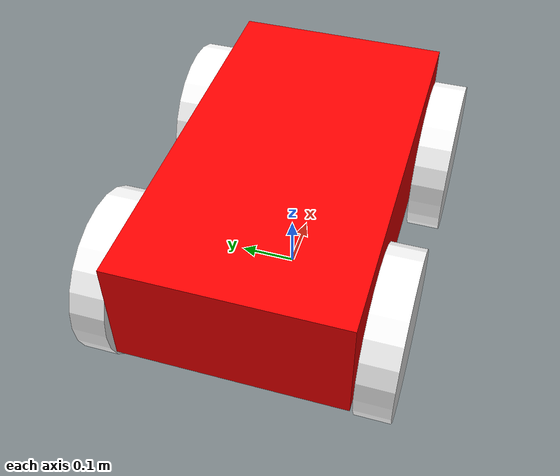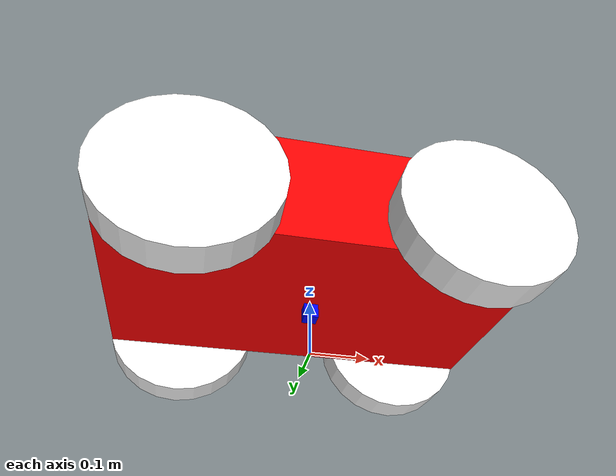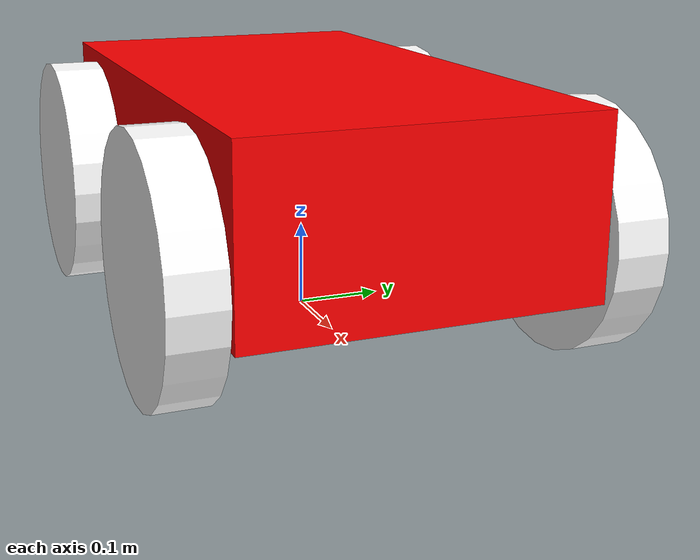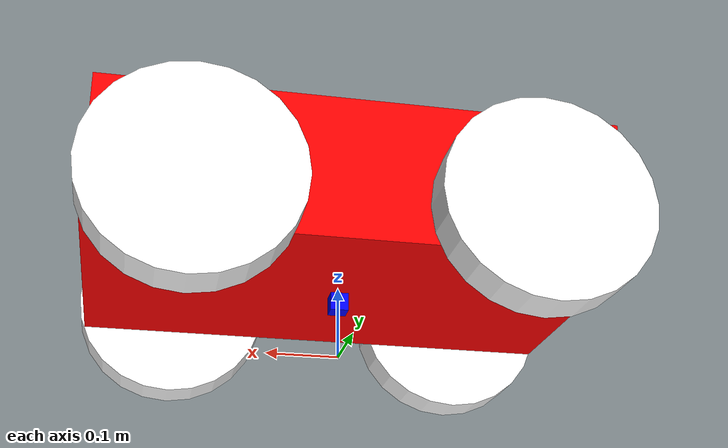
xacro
<?xml version="1.0" ?>
<robot name="isi_robot" xmlns:xacro="http://ros.org/wiki/xacro">

  <!-- ****************** ROBOT CONSTANTS *******************************  -->
  <xacro:property name="base_width" value="0.39"/>
  <xacro:property name="base_length" value="0.70"/>
  <xacro:property name="base_height" value="0.20"/>
  <xacro:property name="wheel_radius" value="0.14"/>
  <xacro:property name="wheel_width" value="0.06"/>
  <xacro:property name="wheel_ygap" value="0.035"/>
  <xacro:property name="wheel_zoff" value="0.05"/>
  <xacro:property name="wheel_xoff" value="0.221"/>
  <xacro:property name="caster_xoff" value="0.217"/>

  <!-- Define intertial property macros  -->
  <xacro:macro name="box_inertia" params="m w h d">
    <inertial>
      <origin xyz="0 0 0" rpy="${pi/2} 0 ${pi/2}"/>
      <mass value="${m}"/>
      <inertia ixx="${(m/12) * (h*h + d*d)}" ixy="0.0" ixz="0.0" iyy="${(m/12) * (w*w + d*d)}" iyz="0.0" izz="${(m/12) * (w*w + h*h)}"/>
    </inertial>
  </xacro:macro>

  <xacro:macro name="cylinder_inertia" params="m r h">
    <inertial>
      <origin xyz="0 0 0" rpy="${pi/2} 0 0" />
      <mass value="${m}"/>
      <inertia ixx="${(m/12) * (3*r*r + h*h)}" ixy="0" ixz="0" iyy="${(m/12) * (3*r*r + h*h)}" iyz="0" izz="${(m/2) * (r*r)}"/>
    </inertial>
  </xacro:macro>

  <xacro:macro name="sphere_inertia" params="m r">
    <inertial>
      <mass value="${m}"/>
      <inertia ixx="${(2/5) * m * (r*r)}" ixy="0.0" ixz="0.0" iyy="${(2/5) * m * (r*r)}" iyz="0.0" izz="${(2/5) * m * (r*r)}"/>
    </inertial>
  </xacro:macro>

  <!-- ****************** ROBOT BASE FOOTPRINT ***************************  -->
  <link name="base_footprint"/>
  <joint name="base_joint" type="fixed">
    <parent link="base_footprint"/>
    <child link="base_link" />
    <origin xyz="0.0 0.0 ${(wheel_radius+wheel_zoff)}" rpy="0 0 0"/>
  </joint>

  <!-- ********************** ROBOT BASE *********************************  -->
  <link name="base_link">
    <visual>
      <origin xyz="0 0 0.0" rpy="0.0 0 0.0"/>
      <geometry>
        <box size="${base_length} ${base_width} ${base_height}"/>
      </geometry>
      <material name="Red">
        <color rgba="${255/255} ${0/255} ${0/255} 1.0"/>
      </material>
    </visual>
    <collision>
      <geometry>
        <box size="${base_length} ${base_width} ${base_height}"/>
      </geometry>
    </collision>
    <xacro:box_inertia m="40.0" w="${base_width}" d="${base_length}" h="${base_height}"/>
  </link>

  <!-- *********************** DRIVE WHEELS 1 ******************************  -->
  <xacro:macro name="wheel" params="prefix x_reflect y_reflect">
    <link name="${prefix}_link">
      <visual>
        <origin xyz="0 0 0" rpy="1.5707963267949 0 0"/>
        <geometry>
          <cylinder radius="${wheel_radius}" length="${wheel_width}"/>
        </geometry>
        <material name="White">
          <color rgba="${255/255} ${255/255} ${255/255} 1.0"/>
        </material>
      </visual>
      <collision>
        <origin xyz="0 0 0" rpy="${pi/2} 0 0"/>
        <geometry>
          <cylinder radius="${wheel_radius}" length="${wheel_width}"/>
        </geometry>
      </collision>
      <xacro:cylinder_inertia m="1.0" r="${wheel_radius}" h="${wheel_width}"/>
    </link>
    <joint name="${prefix}_joint" type="revolute">
      <parent link="base_link"/>
      <child link="${prefix}_link"/>
      <origin xyz="${x_reflect*wheel_xoff} ${y_reflect*(base_width/2+wheel_ygap)} ${-wheel_zoff}" rpy="0 0 0"/>
      <limit upper="1.79769e+308" lower="-1.79769e+308" effort="60" velocity="10.0"/>
      <axis xyz="0 1 0"/>
    </joint>
  </xacro:macro>

  <xacro:wheel prefix="drivewhl_l" x_reflect="-1" y_reflect="1" />
  <xacro:wheel prefix="drivewhl_r" x_reflect="-1" y_reflect="-1" />

  <gazebo reference="drivewhl_l_link">
    <mu1>1</mu1>
    <mu2>1</mu2>
  </gazebo>

  <gazebo reference="drivewhl_r_link">
    <mu1>1</mu1>
    <mu2>1</mu2>
  </gazebo>

  <!-- *********************** DRIVE WHEELS 1 ******************************  -->
  <xacro:macro name="wheel2" params="prefix x_reflect y_reflect">
    <link name="${prefix}_link">
      <visual>
        <origin xyz="0 0 0" rpy="1.5707963267949 0 0"/>
        <geometry>
          <cylinder radius="${wheel_radius}" length="${wheel_width}"/>
        </geometry>
        <material name="White">
          <color rgba="${255/255} ${255/255} ${255/255} 1.0"/>
        </material>
      </visual>
      <collision>
        <origin xyz="0 0 0" rpy="${pi/2} 0 0"/>
        <geometry>
          <cylinder radius="${wheel_radius}" length="${wheel_width}"/>
        </geometry>
      </collision>
      <xacro:cylinder_inertia m="1.0" r="${wheel_radius}" h="${wheel_width}"/>
    </link>
    <joint name="${prefix}_joint" type="revolute">
      <parent link="base_link"/>
      <child link="${prefix}_link"/>
      <origin xyz="${-x_reflect*wheel_xoff} ${-y_reflect*(base_width/2+wheel_ygap)} ${-wheel_zoff}" rpy="0 0 0"/>
      <limit upper="1.79769e+308" lower="-1.79769e+308" effort="60" velocity="10.0"/>
      <axis xyz="0 1 0"/>
   	 </joint>
	  </xacro:macro>

	  <xacro:wheel2 prefix="drivewhl_l2" x_reflect="-1" y_reflect="1" />
	  <xacro:wheel2 prefix="drivewhl_r2" x_reflect="-1" y_reflect="-1" />

	  <gazebo reference="drivewhl_l2_link">
		 <mu1>1</mu1>
		 <mu2>1</mu2>
	  </gazebo>

	  <gazebo reference="drivewhl_r2_link">
		 <mu1>1</mu1>
		 <mu2>1</mu2>
	  </gazebo>

    <!-- *********************** IMU SETUP *********************************  -->
  <joint name="imu_joint" type="fixed">
    <parent link="base_link"/>
    <child link="imu_link"/>
    <origin xyz="-0.10 0 0.05" rpy="0 0 0"/>
  </joint>

  <link name="imu_link"/>
  <gazebo reference="imu_link">
    <sensor type="imu" name="imu_sensor">
      <always_on>true</always_on>
      <update_rate>100</update_rate>
      <visualize>true</visualize>
      <topic>/imu</topic>
      <plugin filename="libignition-gazebo-imu-system.so" name="ignition::gazebo::systems::Imu">
        <topic>/imu</topic>
        <noise>
          <type>gaussian</type>
          <rate>
            <mean>0.0</mean>
            <stddev>0.0002</stddev>
            <bias_mean>0.0</bias_mean>
            <bias_stddev>0.0</bias_stddev>
          </rate>
          <accel>
            <mean>0.0</mean>
            <stddev>0.017</stddev>
            <bias_mean>0.0</bias_mean>
            <bias_stddev>0.0</bias_stddev>
          </accel>
        </noise>
      </plugin>
    </sensor>
  </gazebo>

  <!-- *********************** GPS SETUP **********************************  -->
  <joint name="gps_joint" type="fixed">
    <parent link="base_link"/>
    <child link="gps_link"/>
    <origin xyz="0.10 0 0.05" rpy="0 0 0"/>
  </joint>

  <link name="gps_link"/>

  <!-- *********************  LIDAR SETUP ******************************** -->
  <link name="lidar_link">
    <visual>
      <geometry>
        <box size="0.025 0.025 0.025"/>
      </geometry>
      <material name="Blue">
        <color rgba="0 0 1 1.0"/>
      </material>
    </visual>
    <collision>
      <geometry>
        <box size="0.025 0.025 0.025"/>
      </geometry>
    </collision>
    <inertial>
      <mass value="0.1"/>
      <inertia ixx="0.000166667" ixy="0.0" ixz="0.0" iyy="0.000166667" iyz="0.0" izz="0.000166667"/>
    </inertial>
  </link>

  <joint name="lidar_joint" type="fixed">
    <parent link="base_link"/>
    <child link="lidar_link"/>
    <origin xyz="0.0 0.0 -0.1125" rpy="0 1.57 0"/>
  </joint>

  <gazebo reference="lidar_link">
    <sensor type="gpu_ray" name="lidar_sensor">
      <topic>/lidar</topic>
      <pose>0.0 0 0 0 0 0</pose>
      <visualize>true</visualize>
      <update_rate>10</update_rate>
      <ray>
        <scan>
          <horizontal>
            <samples>100</samples>
            <resolution>1</resolution>
            <min_angle>0</min_angle>
            <max_angle>3.14</max_angle>
          </horizontal>
          <vertical>
            <samples>1</samples>
            <resolution>1</resolution>
            <min_angle>0</min_angle>
            <max_angle>0</max_angle>
          </vertical>
        </scan>
        <range>
          <min>0.01</min>
          <max>10.0</max>
          <resolution>0.01</resolution>
        </range>
        <noise>
          <type>gaussian</type>
          <mean>0.0</mean>
          <stddev>0.01</stddev>
        </noise>
      </ray>
      <plugin filename="libignition-gazebo-sensors-system.so" name="ignition::gazebo::systems::Sensors">
        <topicName>/lidar</topicName>
        <frameName>lidar_link</frameName>
      </plugin>
    </sensor>
  </gazebo>

  <!-- *********************  Gazebo Plugin - Diff Drive ******************************** -->
  <gazebo>
    <plugin filename="ignition-gazebo-diff-drive-system" name="ignition::gazebo::systems::DiffDrive">
      <left_joint>drivewhl_l_joint</left_joint>
      <right_joint>drivewhl_r_joint</right_joint>
      <wheel_separation>${base_length}</wheel_separation>
      <wheel_radius>${wheel_radius}</wheel_radius>
      <odom_publish_frequency>1</odom_publish_frequency>
      <topic>/cmd_vel</topic>
    </plugin>
  </gazebo>

  <gazebo>
    <plugin filename="ignition-gazebo-diff-drive-system" name="ignition::gazebo::systems::DiffDrive">
      <left_joint>drivewhl_r2_joint</left_joint>
      <right_joint>drivewhl_l2_joint</right_joint>
      <wheel_separation>${base_length}</wheel_separation>
      <wheel_radius>${wheel_radius}</wheel_radius>
      <odom_publish_frequency>1</odom_publish_frequency>
      <topic>/cmd_vel</topic>
    </plugin>
  </gazebo>

  <!-- *********************  Gazebo Plugin - Magnetic Force ******************************** -->
  <gazebo>
    <plugin name="magnetic_adhesion_plugin" filename="libmagnetic_adhesion_plugin.so">
      <entity_name>base_footprint</entity_name>
      <topic>/lidar</topic>
      <topicName>/magnetic_force_right</topicName>
      <verbose>true</verbose>
    </plugin>
  </gazebo>
</robot>
